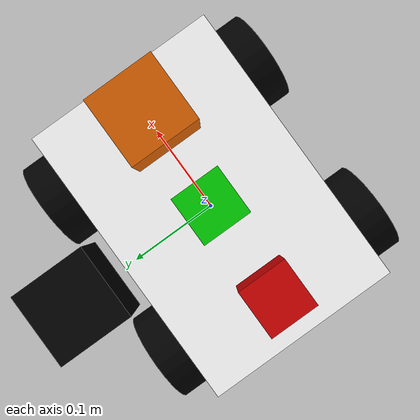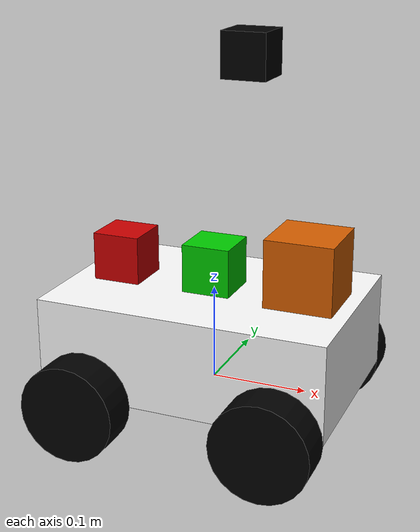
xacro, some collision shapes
<?xml version="1.0"?>
<robot xmlns:xacro="http://www.ros.org/wiki/xacro" name="robot_skeed_06_r1">
  <!--   SET CONSTANTS   -->
  <!-- Parameters of the wheel length/height=h and radius=r -->
  <xacro:property name="h" value="0.04" />
  <xacro:property name="r" value="0.05" />
  <!-- Ubicacion of the wheel wrt base_link -->
  <xacro:property name="wheel_distance" value="0.10" />
  <!-- Parameters of the base_link-->
  <xacro:property name="xx" value="0.30" />
  <xacro:property name="yy" value="0.20" />
  <xacro:property name="zz" value="0.10" />
  <!-- Mass of the objects -->
  <xacro:property name="m_link"  value="2.0" />
  <xacro:property name="m_wheel" value="0.2" />
  <!-- Math constants -->
  <xacro:property name="PI" value="3.14159265359" />
  <xacro:property name="prefix" value="r1_"/>

  <!--   INCLUDE xacro. FILES   -->
  <xacro:include filename="$(find r2d2_rx_description)/urdf/macros_robot.xacro" />
  <xacro:include filename="$(find r2d2_rx_description)/urdf/materials.xacro" />
  <xacro:include filename="$(find r2d2_rx_description)/urdf/macros_gazebo.xacro" />

  <!--    CREATE THE ROBOT   -->
  <xacro:robot prefix="${prefix}" >
  </xacro:robot>
  <xacro:set_gazebo prefix="${prefix}" >
  </xacro:set_gazebo>
</robot>

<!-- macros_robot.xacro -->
<robot xmlns:xacro="http://www.ros.org/wiki/xacro" name="macros_robot">
  <!--   INCLUDE xacro. FILES   -->
  <xacro:include filename="$(find r2d2_rx_description)/urdf/macros_basico.xacro"/>

  <!--   MACRO TO CREATE THE ROBOT   -->
  <xacro:macro name="robot" params="prefix">
    <!--  SET THE BASE LINK  -->
    <link name="${prefix}base_link">
        <xacro:rectangular_body mass="${m_link}" material="white"
                                xx="${xx}" yy="${yy}" zz="${zz}"
                                origin_z="${zz/2}"/>
    </link>

    <!--  ADD "wheel1" TO "base_link"  -->
    <link name="${prefix}wheel_1">
      <xacro:wheel mass="${m_wheel}" r="${r}" h="${h}" material="black"/>
    </link>
    <joint name="${prefix}base_to_wheel1" type="continuous">
      <parent link="${prefix}base_link"/>
      <child  link="${prefix}wheel_1"/>
      <origin rpy="${-PI/2} 0 0" xyz="${wheel_distance} ${(yy + h)/2}  0"/>
      <axis xyz="0 0 1"/>
    </joint>

    <!--  ADD "wheel2" TO "base_link"  -->
    <link name="${prefix}wheel_2">
      <xacro:wheel mass="${m_wheel}" r="${r}" h="${h}" material="black"/>
    </link>
    <joint name="${prefix}base_to_wheel2" type="continuous">
      <parent link="${prefix}base_link"/>
      <child  link="${prefix}wheel_2"/>
      <origin rpy="${-PI/2} 0 0" xyz="${wheel_distance}  ${-(yy + h)/2} 0"/>
      <axis xyz="0 0 1"/>
    </joint>

    <!--  ADD "wheel3" TO "base_link"  -->
    <link name="${prefix}wheel_3">
      <xacro:wheel mass="${m_wheel}" r="${r}" h="${h}" material="black"/>
    </link>
    <joint name="${prefix}base_to_wheel3" type="continuous">
      <parent link="${prefix}base_link"/>
      <child  link="${prefix}wheel_3"/>
      <origin rpy="${-PI/2} 0 0" xyz="${-wheel_distance}  ${(yy + h)/2}  0"/>
      <axis xyz="0 0 1"/>
    </joint>

    <!--  ADD "wheel4" TO "base_link"  -->
    <link name="${prefix}wheel_4">
      <xacro:wheel mass="${m_wheel}" r="${r}" h="${h}" material="black"/>
    </link>
    <joint name="${prefix}base_to_wheel4" type="continuous">
      <parent link="${prefix}base_link"/>
      <child  link="${prefix}wheel_4"/>
      <origin rpy="${-PI/2} 0 0" xyz="${-wheel_distance}  ${-(yy + h)/2}   0"/>
      <axis xyz="0 0 1"/>
    </joint>

    <!--  ADD LASER (i.e hokuyo)  -->
    <!-- Set joint -->
    <joint name="${prefix}laser_joint" type="fixed">
      <origin rpy="0 0 ${0*PI/2}" xyz="0.1 0.0 ${zz + 0.07/2}"/>
      <parent link="${prefix}base_link"/>
      <child  link="${prefix}laser_link"/>
    </joint>
    <!-- Set body -->
    <link name="${prefix}laser_link">
      <!-- Visual properties -->
      <visual>
        <origin xyz="0 0 0" rpy="0 0 0"/>
        <geometry>
          <mesh filename ="file://$(find r2d2_rx_description)/meshes/hokuyo.dae"/>
        </geometry>
      </visual>
      <!-- Collision properties for gazebo -->
      <collision>
        <origin xyz="0 0 0" rpy="0 0 0"/>
        <geometry>
          <box size="0.07 0.07 0.07"/>
        </geometry>
      </collision>
      <!-- Inertial properties for gazebo -->
      <inertial>
        <mass value="0.1" />
        <origin xyz="0 0 0" rpy="0 0 0"/>
        <inertia ixx="1e-6" ixy="0" ixz="0" iyy="1e-6" iyz="0" izz="1e-6" />
      </inertial>
    </link>
    <!-- SET ADDITIONAL LINK IN ORDER TO DISPLAY LASER MESSAGES IN RVIZ -->
    <joint name="${prefix}laser_gz" type="fixed">
      <origin rpy="0 0 0" xyz="0 0 0 "/>
      <parent link="${prefix}laser_link"/>
      <child  link="${prefix}robot/${prefix}base_link/${prefix}laser_sensor"/>
    </joint>
    <link name="${prefix}robot/${prefix}base_link/${prefix}laser_sensor">
    </link>

    <!--  ADD IMU  -->
    <!-- Set joint -->
    <joint name="${prefix}imu_joint" type="fixed">
      <origin rpy="0 0 ${0*PI/2}" xyz="-0.1 0.0 ${zz + 0.05/2}"/>
      <parent link="${prefix}base_link"/>
      <child  link="${prefix}imu_link"/>
    </joint>
    <!-- Set body -->
    <link name="${prefix}imu_link">
      <!-- Visual properties -->
      <visual>
        <origin xyz="0 0 0" rpy="0 0 0"/>
        <geometry>
          <box size="0.05 0.05 0.05"/>
        </geometry>
        <material name="red"/>
      </visual>
      <!-- Collision properties for gazebo -->
      <collision>
        <origin xyz="0 0 0" rpy="0 0 0"/>
        <geometry>
          <box size="0.05 0.05 0.05"/>
        </geometry>
      </collision>
      <!-- Inertial properties for gazebo -->
      <inertial>
        <mass value="0.05" />
        <origin xyz="0 0 0" rpy="0 0 0"/>
        <inertia ixx="1e-6" ixy="0" ixz="0" iyy="1e-6" iyz="0" izz="1e-6" />
      </inertial>
    </link>
    <!-- SET ADDITIONAL LINK IN ORDER TO DISPLAY MESSAGES IN RVIZ -->
    <joint name="${prefix}imu_gz" type="fixed">
      <origin rpy="0 0 0" xyz="0 0 0 "/>
      <parent link="${prefix}imu_link"/>
      <child  link="${prefix}robot/${prefix}base_link/${prefix}imu_sensor"/>
    </joint>
    <link name="${prefix}robot/${prefix}base_link/${prefix}imu_sensor">
    </link>

    <!--  ADD GPS  -->
    <!-- Set joint -->
    <joint name="${prefix}gps_joint" type="fixed">
      <origin rpy="0 0 ${0*PI/2}" xyz="0.0 0.0 ${zz + 0.05/2}"/>
      <parent link="${prefix}base_link"/>
      <child  link="${prefix}gps_link"/>
    </joint>
    <!-- Set body -->
    <link name="${prefix}gps_link">
      <!-- Visual properties -->
      <visual>
        <origin xyz="0 0 0" rpy="0 0 0"/>
        <geometry>
          <box size="0.05 0.05 0.05"/>
        </geometry>
        <material name="green"/>
      </visual>
      <!-- Collision properties for gazebo -->
      <collision>
        <origin xyz="0 0 0" rpy="0 0 0"/>
        <geometry>
          <box size="0.05 0.05 0.05"/>
        </geometry>
      </collision>
      <!-- Inertial properties for gazebo -->
      <inertial>
        <mass value="0.05" />
        <origin xyz="0 0 0" rpy="0 0 0"/>
        <inertia ixx="1e-6" ixy="0" ixz="0" iyy="1e-6" iyz="0" izz="1e-6" />
      </inertial>
    </link>
    <!-- SET ADDITIONAL LINK IN ORDER TO DISPLAY MESSAGES IN RVIZ -->
    <joint name="${prefix}gps_gz" type="fixed">
      <origin rpy="0 0 0" xyz="0 0 0 "/>
      <parent link="${prefix}gps_link"/>
      <child  link="${prefix}robot/${prefix}base_link/${prefix}gps_sensor"/>
    </joint>
    <link name="${prefix}robot/${prefix}base_link/${prefix}gps_sensor">
    </link>

    <!--  ADD CAMERA  -->
    <!-- Set joint -->
    <joint name="${prefix}camera" type="fixed">
      <origin rpy="0 0 ${0*PI/2}" xyz="0.0 0.1 ${zz + 0.05/2 + 0.2}"/>
      <parent link="${prefix}base_link"/>
      <child  link="${prefix}camera_link"/>
    </joint>
    <!-- Set body -->
    <link name="${prefix}camera_link">
      <!-- Visual properties -->
      <visual>
        <origin xyz="0 0 0" rpy="0 0 0"/>
        <geometry>
          <box size="0.05 0.05 0.05"/>
        </geometry>
        <material name="black"/>
      </visual>
      <!-- Collision properties for gazebo -->
      <collision>
        <origin xyz="0 0 0" rpy="0 0 0"/>
        <geometry>
          <box size="0.05 0.05 0.05"/>
        </geometry>
      </collision>
      <!-- Inertial properties for gazebo -->
      <inertial>
        <mass value="0.05" />
        <origin xyz="0 0 0" rpy="0 0 0"/>
        <inertia ixx="1e-6" ixy="0" ixz="0" iyy="1e-6" iyz="0" izz="1e-6" />
      </inertial>
    </link>
  </xacro:macro>

</robot>

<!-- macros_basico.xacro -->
<robot xmlns:xacro="http://www.ros.org/wiki/xacro" name="macros_basico">
  <!--   MACRO TO CREATE BOXES  -->
  <!-- Macro to create the wheels -->
  <xacro:macro  name="rectangular_body"
                params="mass xx yy zz material
                        origin_x:=0  origin_y:=0  origin_z:=0">
    <!-- Visual properties -->
    <visual>
      <geometry>
        <box size="${xx}  ${yy}  ${zz}"/>
      </geometry>
      <origin rpy="0 0 0" xyz="${origin_x} ${origin_y} ${origin_z}"/>
      <material name="${material}"/>
    </visual>
    <!-- Collision properties for gazebo -->
    <collision>
      <geometry>
        <box size="${xx}  ${yy}  ${zz}"/>
      </geometry>
      <origin rpy="0 0 0" xyz="${origin_x} ${origin_y} ${origin_z}"/>
    </collision>
    <!-- Inertial properties for gazebo -->
    <inertial>
      <mass value="${mass}" />
      <origin rpy="0 0 0" xyz="${origin_x} ${origin_y} ${origin_z}"/>
      <inertia ixx="${mass*(yy*yy + zz*zz)/12.0}"
                iyy="${mass*(xx*xx + zz*zz)/12.0}"
                izz="${mass*(xx*xx + yy*yy)/12.0}"
                ixy="0" ixz="0" iyz="0"/>
    </inertial>
  </xacro:macro>

  <!--   MACRO TO CREATE WHEELS  -->
  <!-- Macro to create the wheels -->
  <xacro:macro name="wheel" params="mass r h material">
    <!-- Visual properties -->
    <visual>
      <geometry>
        <cylinder length="${h}" radius="${r}"/>
      </geometry>
      <origin rpy="0 0 0" xyz="0 0 0"/>
      <material name="${material}"/>
    </visual>
    <!-- Collision properties for gazebo -->
    <collision>
      <geometry>
        <cylinder length="${h}" radius="${r}"/>
      </geometry>
      <origin rpy="0 0 0" xyz="0 0 0"/>
    </collision>
    <!-- Inertial properties for gazebo -->
    <inertial>
      <mass value="${mass}" />
      <origin rpy="0 0 0" xyz="0 0 0"/>
      <inertia ixx="${mass*(3*r*r+h*h)/12.0}"
                iyy="${mass*(3*r*r+h*h)/12.0}"
                izz="${mass*(r*r)/2.0}"
                ixy="0" ixz="0" iyz="0"/>
    </inertial>
  </xacro:macro>

  <!--   MACRO TO CREATE SPHERICAL WHEELS  -->
  <!-- Macro to create the wheels -->
  <xacro:macro name="spherical_wheel" params="mass r material">
    <!-- Visual properties -->
    <visual>
      <geometry>
        <sphere radius="${r}"/>
      </geometry>
      <origin rpy="0 0 0" xyz="0 0 0"/>
      <material name="${material}"/>
    </visual>
    <!-- Collision properties for gazebo -->
    <collision>
      <geometry>
        <sphere radius="${r}"/>
      </geometry>
      <origin rpy="0 0 0" xyz="0 0 0"/>
    </collision>
    <!-- Inertial properties for gazebo -->
    <inertial>
      <mass value="${mass}" />
      <origin rpy="0 0 0" xyz="0 0 0"/>
      <inertia ixx="${2*(mass*r*r)/5.0}"
                iyy="${2*(mass*r*r)/5.0}"
                izz="${2*(mass*r*r)/5.0}"
                ixy="0" ixz="0" iyz="0"/>
    </inertial>
  </xacro:macro>

</robot>

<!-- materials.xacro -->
<robot name="xacro_materials" xmlns:xacro="http://ros.org/wiki/xacro">
  <!--  SET MATERIAL TAGS  -->
  <material name="black">
    <color rgba="0.0 0.0 0.0 1.0"/>
  </material>

  <material name="dark">
    <color rgba="0.3 0.3 0.3 1.0"/>
  </material>

  <material name="light_black">
    <color rgba="0.4 0.4 0.4 1.0"/>
  </material>

  <material name="blue">
    <color rgba="0.0 0.0 0.8 1.0"/>
  </material>

  <material name="green">
    <color rgba="0.0 0.8 0.0 1.0"/>
  </material>

  <material name="grey">
    <color rgba="0.5 0.5 0.5 1.0"/>
  </material>

  <material name="orange">
    <color rgba="${255/255} ${108/255} ${10/255} 1.0"/>
  </material>

  <material name="brown">
    <color rgba="${222/255} ${207/255} ${195/255} 1.0"/>
  </material>

  <material name="red">
    <color rgba="0.8 0.0 0.0 1.0"/>
  </material>

  <material name="white">
    <color rgba="1.0 1.0 1.0 1.0"/>
  </material>
</robot>
